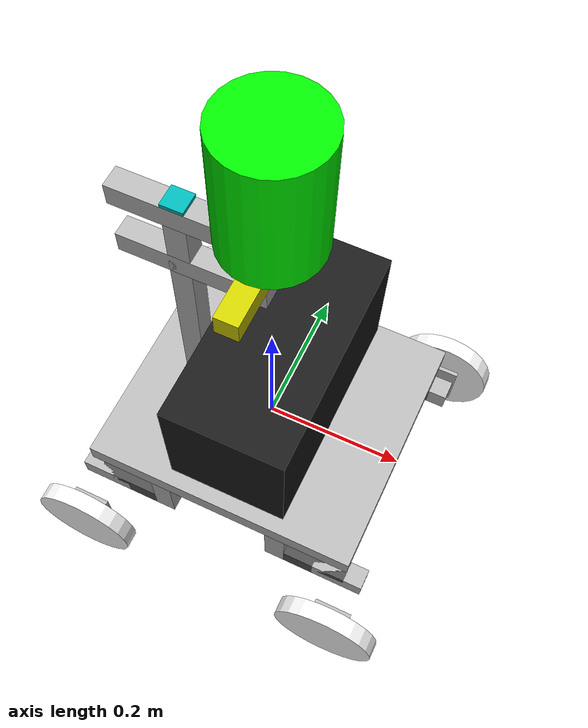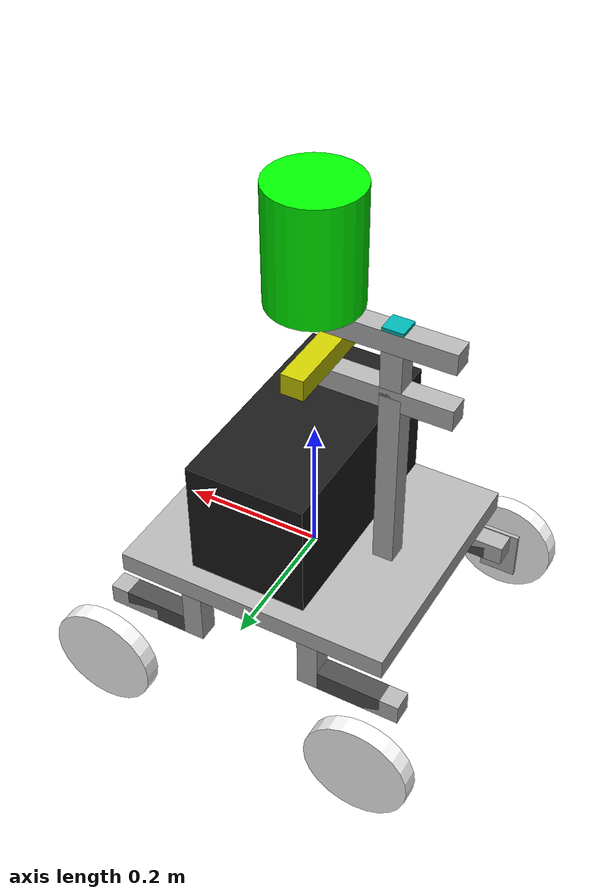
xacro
<robot xmlns:xacro="http://www.ros.org/wiki/xacro" name="mezbot">

	<xacro:include filename="$(find mezbot)/mezbot.gazebo" />
	<!--xacro:include filename="$(find zed_wrapper)/urdf/zed.urdf" /-->
	<!-- physical constants definitions -->

	<xacro:property name="base_link_length" value="0.4"/>
	<xacro:property name="base_link_width" value="0.3648"/>
	<xacro:property name="wheel_width" value="0.0254"/>
	<xacro:property name="wheel_radius" value="0.0762"/>
	<xacro:property name="strut_length" value="0.0762"/>
	<xacro:property name="t_slot_width" value="0.03"/>
	<xacro:property name="pivot_length" value="0.0935"/>
	<xacro:property name="m_bracket_height" value="0.0762"/>
	<xacro:property name="m_bracket_width" value="0.055"/>
	<xacro:property name="m_bracket_thickness" value="0.00625"/>
	<xacro:property name="H_arm_length" value="0.2"/>
	<xacro:property name="pi" value="3.1416"/>

	<!-- material definitions -->

	<material name="Gray1">
		<color rgba = "0.7 0.7 0.7 1.0"/>
	</material>

	<material name="Cyan">
		<color rgba="0 0.7 0.7 1.0"/>
	</material>

	<material name="Gray2">
		<color rgba="0.3 0.3 0.3 1.0"/>
	</material>

	<material name="Black">
		<color rgba="0.1 0.1 0.1 1.0"/>
	</material>

	<material name="White">
		<color rgba="1 1 1 1"/>
	</material>

	<material name="Magenta">
		<color rgba="0.8 0 0.8 1"/>
	</material>

	<material name="Yellow">
		<color rgba="0.8 0.8 0 1.0"/>
	</material>

	<material name="Green">
		<color rgba="0 1 0 1"/>
	</material>

	<!-- singular links and joints -->

	 <link name="base_link">
		<visual>
			<origin xyz="0 0 ${t_slot_width/2} " rpy="0 0 0"/>
			<geometry>
				<box size="${base_link_length} ${base_link_width} ${t_slot_width}"/>
			</geometry>
			<material name="Gray1"/>
		</visual>
		<collision>
			<geometry>
				<box size="${base_link_length} ${base_link_width} ${t_slot_width}"/>
			</geometry>
		</collision>
		<inertial>
			<mass value="1.53109"/>
			<inertia ixx="0.1" ixy="0.0" ixz="0.0" iyy="0.1" iyz="0.0" izz="0.06"/>
		</inertial>
	</link>

	<joint name="base_link_to_V_support" type="fixed">
		<parent link="base_link"/>
		<child link = "base_link_back_Vsupport"/>
		<origin xyz="0 0 0"/>
	</joint>

	<link name="base_link_back_Vsupport">
		<visual>
			<origin xyz="-${0.129-(t_slot_width/2)} 0 0.154" rpy="0 0 0"/>
			<geometry>
				<box size="${t_slot_width} ${t_slot_width} 0.308"/>
			</geometry>
			<material name="Gray1"/>
		</visual>
		<collision>
			<geometry>
				<box size="${t_slot_width} ${t_slot_width} 0.308"/>
			</geometry>
		</collision>
		<inertial>
			<mass value="0.23"/>
			<inertia ixx="0.0" ixy="0.0" ixz="0.0" iyy="0.01" iyz="0.0" izz="0.01"/>
		</inertial>
	</link>

	<joint name="base_link_V_support_to_ZED_arm" type="fixed">
		<parent link="base_link_back_Vsupport"/>
		<child link = "ZED_arm"/>
		<origin xyz="0 0 0"/>
	</joint>

	<link name="ZED_arm">
		<visual>
			<origin xyz="-${base_link_length/4} 0 0.305" rpy="0 0 0"/>
			<geometry>
				<box size="${H_arm_length} ${t_slot_width} ${t_slot_width}"/>
			</geometry>
			<material name="Gray1"/>
		</visual>
		<collision>
			<geometry>
				<box size="${H_arm_length} ${t_slot_width} ${t_slot_width}"/>
			</geometry>
		</collision>
		<inertial>
			<mass value="0.16"/>
			<inertia ixx="0.0" ixy="0.0" ixz="0.0" iyy="0.0" iyz="0.0" izz="0.0"/>
		</inertial>
	</link>

	<link name="base_link_back_Vsupport_scanner">
		<visual>
			<origin xyz="-${0.129-(t_slot_width/2)} 0 0.3415" rpy="0 0 0"/>
			<geometry>
				<box size="${t_slot_width} ${t_slot_width} 0.067"/>
			</geometry>
			<material name="Gray1"/>
		</visual>
		<collision>
			<geometry>
				<box size="${t_slot_width} ${t_slot_width} 0.067"/>
			</geometry>
		</collision>
		<inertial>
			<mass value="0.14"/>
			<inertia ixx="0.0" ixy="0.0" ixz="0.0" iyy="0.01" iyz="0.0" izz="0.0"/>
		</inertial>
	</link>

	<joint name="ZED_arm_to_Scan_arm_V_support" type="fixed">
		<parent link="ZED_arm"/>
		<child link = "base_link_back_Vsupport_scanner"/>
		<origin xyz="0 0 0"/>
	</joint>

	<link name="base_link_frame_scanner_arm">
		<visual>
		    <origin xyz="-${base_link_length/4} 0 0.39" rpy="0 0 0"/>
			<geometry>
				<box size="${H_arm_length} ${t_slot_width} ${t_slot_width}"/>
			</geometry>
			<material name="Gray1"/>
		</visual>
		<collision>
			<geometry>
				<box size="${H_arm_length} ${t_slot_width} ${t_slot_width}"/>
			</geometry>
		</collision>
		<inertial>
			<mass value="0.16"/>
			<inertia ixx="0.0" ixy="0.0" ixz="0.0" iyy="0.01" iyz="0.0" izz="0.0"/>
		</inertial>
	</link>

	<joint name="V_support_to_scan_arm" type="fixed">
		<parent link="base_link_back_Vsupport_scanner"/>
		<child link = "base_link_frame_scanner_arm"/>
		<origin xyz="0 0 0"/>
	</joint>

	<link name="battery">
		<visual>
			<origin xyz="0.01 0 0.1315" rpy="0 0 0"/>
			<geometry>
				<box size="0.17 0.33 0.173"/>
			</geometry>
			<material name="Black" />
		</visual>
		<collision>
			<geometry>
				<box size="0.17 0.33 0.173"/>
			</geometry>
		</collision>
		<inertial>
			<mass value="10"/>
			<inertia ixx="0.18" ixy="0.0" ixz="0.0" iyy="0.120" iyz="0.0" izz="0.110"/>
		</inertial>
	</link>

	<joint name="base_link_to_battery" type="fixed">
		<parent link="base_link"/>
		<child link = "battery"/>
		<origin xyz="0 0 0"/>
	</joint>

	<joint name="ZED_arm_to_ZED_cam" type="fixed">
		<parent link="ZED_arm"/>
		<child link="ZED_cam_link"/>
		<origin xyz="-0.016 0 0.335" />
	</joint>

	<link name="ZED_cam_link">
		<visual>

			<geometry>
				<box size="0.032 0.170 0.03"/>
			</geometry>
			<material name="Yellow"/>
		</visual>
		<collision>
			<geometry>
				<box size="0.032 0.170 0.03"/>
			</geometry>
		</collision>
		<inertial>
			<mass value="0.412"/>
			<inertia ixx="0.016" ixy="0.0" ixz="0.0" iyy="0.015" iyz="0.0" izz="0.0"/>
		</inertial>
	</link>

	<link name="Green">
		<visual>
			<geometry>
				<cylinder length="0.165" radius="0.0645"/>
			</geometry>
			<material name="Green"/>
		</visual>
		<collision>
			<geometry>
				<cylinder length="0.165" radius="0.0645"/>
			</geometry>
		</collision>
		<inertial>
			<mass value="1.9"/>
			<inertia ixx="0.235" ixy="0.0" ixz="0.018" iyy="0.236" iyz="0.01" izz="0.01"/>
		</inertial>
	</link>

	<joint name="scan" type="continuous">
		<parent link="base_link_frame_scanner_arm"/>
		<child link = "Green"/>
		<axis xyz="0 0 1"/>
		<origin xyz="0 0 0.4875" rpy="0 0 0"/>
	</joint>

	<link name="imu">
		<visual>
			<geometry>
				<box size="0.03 0.03 0.005"/>
			</geometry>
			<material name="Cyan"/>
		</visual>
		<collision>
			<geometry>
				<box size="0.03 0.03 0.005"/>
			</geometry>
		</collision>
		<inertial>
			<mass value="0.01"/>
			<inertia ixx="0" ixy="0" ixz="0" iyy="0" iyz="0" izz="0"/>
		</inertial>
	</link>

	<joint name="imu" type="fixed">
		<parent link="base_link_frame_scanner_arm"/>
		<child link = "imu"/>
		<axis xyz="0 0 1"/>
		<origin xyz="-${0.129-(t_slot_width/2)} 0 0.4075" rpy="0 0 0"/>
	</joint>

	<!-- symmetric links and joints -->

	<!-- Defines macro to create a strut and associated joint with base_link -->
	<xacro:macro name="strut" params="prefix reflectx reflecty">
		<link name="${prefix}_strut">
			<visual>
				<origin xyz="${reflectx*(t_slot_width+0.06)} ${reflecty*((base_link_width/2)-(t_slot_width/2))} -${strut_length/2}"/>
				<geometry>
					<box size="${t_slot_width} ${t_slot_width} ${strut_length}"/>
				</geometry>
				<material name="Gray1"/>
			</visual>
			<collision>
				<geometry>
					<box size="${t_slot_width} ${t_slot_width} ${strut_length}"/>
				</geometry>
			</collision>
			<inertial>
				<mass value="0.07"/>
				<inertia ixx="0.0" ixy="0.0" ixz="0.0" iyy="0.01" iyz="0.0" izz="0.0"/>
			</inertial>
		</link>

		<joint name="base_link_to_${prefix}_strut" type="fixed">
			<parent link="base_link"/>
			<child link="${prefix}_strut"/>
			<origin xyz="0 0 0"/>
		</joint>
	</xacro:macro>

	<!-- create the 4 struts attached to the base_link -->
	<xacro:strut prefix="FL" reflectx="1" reflecty="1"/>
	<xacro:strut prefix="FR" reflectx="1" reflecty="-1"/>
	<xacro:strut prefix="BL" reflectx="-1" reflecty="1"/>
	<xacro:strut prefix="BR" reflectx="-1" reflecty="-1"/>

	<!-- Define macro to create pivots -->
	<xacro:macro name="pivots" params="prefix reflectx reflecty">
		<link name="${prefix}_pivot">
			<visual>
				<origin xyz="${reflectx*((t_slot_width*1.5)+0.06+(pivot_length/2))} ${reflecty*((base_link_width/2)-(t_slot_width/2))} -${strut_length-(t_slot_width/2)}"/>
				<geometry>
					<box size="${pivot_length} ${t_slot_width} ${t_slot_width}"/>
				</geometry>
				<material name="Gray2"/>
			</visual>
			<collision>
				<geometry>
					<box size=" ${pivot_length} ${t_slot_width} ${t_slot_width}"/>
				</geometry>
			</collision>
			<inertial>
				<mass value="0.1"/>
				<inertia ixx="0.01" ixy="0.0" ixz="0.01" iyy="0.01" iyz="0.0" izz="0.0"/>
			</inertial>
		</link>

		<joint name="${prefix}_strut_to_pivot" type="fixed">
			<parent link="${prefix}_strut"/>
			<child link = "${prefix}_pivot"/>
			<origin xyz="0 0 0"/>
		</joint>
	</xacro:macro>

	<!-- Define the 4 pivots -->
	<xacro:pivots prefix="FL" reflectx="1" reflecty="1"/>
	<xacro:pivots prefix="FR" reflectx="1" reflecty="-1"/>
	<xacro:pivots prefix="BL" reflectx="-1" reflecty="1"/>
	<xacro:pivots prefix="BR" reflectx="-1" reflecty="-1"/>

	<!-- Define macro to create pivot extensions -->
	<xacro:macro name="pivotextension" params="prefix reflectx reflecty">
		<link name="${prefix}_pivotextension">
			<visual>
				<origin xyz="${reflectx*((t_slot_width*1.5)+0.096+(pivot_length/2))} ${reflecty*((base_link_width/2)-(t_slot_width/2))} -${strut_length-(t_slot_width/2)}"/>
				<geometry>
					<box size="${strut_length} ${t_slot_width} ${t_slot_width}"/>
				</geometry>
				<material name="Gray1"/>
			</visual>
			<collision>
				<geometry>
					<box size="${strut_length} ${t_slot_width} ${t_slot_width}"/>
				</geometry>
			</collision>
			<inertial>
				<mass value="0.07"/>
				<inertia ixx="0.01" ixy="0.0" ixz="0.0" iyy="0.01" iyz="0.0" izz="0.0"/>
			</inertial>
		</link>

		<joint name="${prefix}_wheel_pivot" type="prismatic">
			<parent link="${prefix}_pivot"/>
			<child link = "${prefix}_pivotextension"/>
			<axis xyz="0 0 1 "/>
			<origin xyz="0 0 0"/>
			<dynamics damping="1.0" friction="0.0"/>
			<limit effort="0.0" lower="0.0" upper="0.0" velocity="0.0"/>
		</joint>
	</xacro:macro>

	<!-- Define the 4 pivot extensions -->
	<xacro:pivotextension prefix="FL" reflectx="1" reflecty="1"/>
	<xacro:pivotextension prefix="FR" reflectx="1" reflecty="-1"/>
	<xacro:pivotextension prefix="BL" reflectx="-1" reflecty="1"/>
	<xacro:pivotextension prefix="BR" reflectx="-1" reflecty="-1"/>

	<!-- Define motor bracket macro -->
	<xacro:macro name="motorbracket" params="prefix reflectx reflecty">
		<link name="${prefix}_motorbracket">
			<visual>
				<origin xyz="${reflectx*(base_link_length/2)} ${reflecty*((base_link_width/2)+0.035)} -0.115"/>
				<geometry>
					<box size="${m_bracket_width} ${m_bracket_thickness} ${m_bracket_height}"/>
				</geometry>
				<material name="Gray1"/>
			</visual>
			<collision>
				<geometry>
					<box size="${m_bracket_width} ${m_bracket_thickness} ${m_bracket_height}"/>
				</geometry>
			</collision>
			<inertial>
				<mass value="0.13"/>
				<inertia ixx="0.02" ixy="0.0" ixz="0.01" iyy="0.02" iyz="0.01" izz="0.01"/>
			</inertial>
		</link>

		<joint name="${prefix}_suspension" type="fixed">
			<parent link="${prefix}_pivotextension"/>
			<child link = "${prefix}_motorbracket"/>
		</joint>
	</xacro:macro>

	<!--define the 4 motor brackets -->
	<xacro:motorbracket prefix="FL" reflectx="1" reflecty="1"/>
	<xacro:motorbracket prefix="FR" reflectx="1" reflecty="-1"/>
	<xacro:motorbracket prefix="BL" reflectx="-1" reflecty="1"/>
	<xacro:motorbracket prefix="BR" reflectx="-1" reflecty="-1"/>

	<!-- Define the wheel -->

	<xacro:macro name="wheel" params="prefix reflectx reflecty">
		<link name="${prefix}_wheel">
			<visual>
				<geometry>
					<cylinder length="${wheel_width}" radius="${wheel_radius}"/>
				</geometry>
				<material name="White"/>
			</visual>
			<collision>
				<geometry>
					<cylinder length="${wheel_width}" radius="${wheel_radius}"/>
				</geometry>
			</collision>
			<inertial>
				<mass value="1"/>
				<inertia ixx="0.18" ixy="0.04" ixz="0.07" iyy="0.16" iyz="0.08" izz="0.09"/>
			</inertial>
		</link>

		<joint name="${prefix}_wheel_motion" type="continuous">
			<parent link="${prefix}_motorbracket"/>
			<child link = "${prefix}_wheel"/>
			<axis xyz="0 0 1"/>
			<origin xyz="${reflectx*(base_link_length/2)} ${reflecty*0.2403} -0.115" rpy="${pi/2} 0 0"/>
		</joint>
		<transmission name="${prefix}_transmission">
			<type>transmission_interface/SimpleTransmission</type>
			<joint name="${prefix}_wheel_motion">
				<hardwareInterface>hardware_interface/VelocityJointInterface</hardwareInterface>
			</joint>
			<actuator name="${prefix}_motor">
				<mechanicalReduction>1</mechanicalReduction>
			</actuator>
		</transmission>
	</xacro:macro>

	<!-- Define the 4 wheels -->
	<xacro:wheel prefix="FL" reflectx="1" reflecty="1"/>
	<xacro:wheel prefix="FR" reflectx="1" reflecty="-1"/>
	<xacro:wheel prefix="BL" reflectx="-1" reflecty="1"/>
	<xacro:wheel prefix="BR" reflectx="-1" reflecty="-1"/>

	<!-- Gazebo plugin for ROS control -->

</robot>
